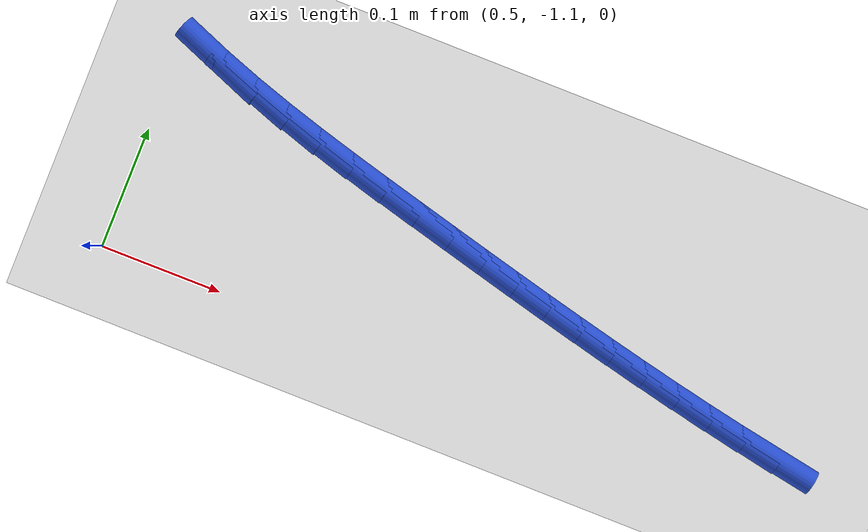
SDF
<sdf version="1.6">
 <world name="default">
  <model name="ground_plane">
   <static>1</static>
   <link name="link">
    <collision name="collision">
     <geometry><plane><normal>0 0 1</normal><size>100 100</size></plane></geometry>
     <surface><friction><ode><mu>100</mu><mu2>50</mu2></ode></friction></surface>
    </collision>
    <visual name="visual">
     <cast_shadows>0</cast_shadows>
     <geometry><plane><normal>0 0 1</normal><size>100 100</size></plane></geometry>
     <material>
      <script><uri>file://media/materials/scripts/gazebo.material</uri><name>Gazebo/WhiteGlow</name></script>
     </material>
    </visual>
   </link>
  </model>
  <model name="line">
   <link name="link_157">
    <pose>1.0533956757699363 -1.06149484795782 0.01 0 1.57 -0.18119789779623513</pose>
    <collision name="collision">
     <geometry><cylinder><radius>0.01</radius><length>0.08</length></cylinder></geometry>
    </collision>
    <visual name="visual">
     <material>
      <script><name>Gazebo/Blue</name><uri>file://media/materials/scripts/gazebo.material</uri></script>
     </material>
     <geometry><cylinder><radius>0.01</radius><length>0.08</length></cylinder></geometry>
    </visual>
   </link>
   <link name="link_158">
    <pose>1.0224971005759882 -1.0558340014719385 0.01 0 1.57 -0.1966569485214336</pose>
    <collision name="collision">
     <geometry><cylinder><radius>0.01</radius><length>0.08</length></cylinder></geometry>
    </collision>
    <visual name="visual">
     <material>
      <script><name>Gazebo/Blue</name><uri>file://media/materials/scripts/gazebo.material</uri></script>
     </material>
     <geometry><cylinder><radius>0.01</radius><length>0.08</length></cylinder></geometry>
    </visual>
   </link>
   <link name="link_159">
    <pose>0.9917760674066369 -1.0497133898960889 0.01 0 1.57 -0.2080559834303851</pose>
    <collision name="collision">
     <geometry><cylinder><radius>0.01</radius><length>0.08</length></cylinder></geometry>
    </collision>
    <visual name="visual">
     <material>
      <script><name>Gazebo/Blue</name><uri>file://media/materials/scripts/gazebo.material</uri></script>
     </material>
     <geometry><cylinder><radius>0.01</radius><length>0.08</length></cylinder></geometry>
    </visual>
   </link>
   <link name="link_160">
    <pose>0.9612503224436278 -1.0432690708495436 0.01 0 1.57 -0.21784442964093045</pose>
    <collision name="collision">
     <geometry><cylinder><radius>0.01</radius><length>0.08</length></cylinder></geometry>
    </collision>
    <visual name="visual">
     <material>
      <script><name>Gazebo/Blue</name><uri>file://media/materials/scripts/gazebo.material</uri></script>
     </material>
     <geometry><cylinder><radius>0.01</radius><length>0.08</length></cylinder></geometry>
    </visual>
   </link>
   <link name="link_161">
    <pose>0.9308836282293085 -1.0365471860408906 0.01 0 1.57 -0.226569821208393</pose>
    <collision name="collision">
     <geometry><cylinder><radius>0.01</radius><length>0.08</length></cylinder></geometry>
    </collision>
    <visual name="visual">
     <material>
      <script><name>Gazebo/Blue</name><uri>file://media/materials/scripts/gazebo.material</uri></script>
     </material>
     <geometry><cylinder><radius>0.01</radius><length>0.08</length></cylinder></geometry>
    </visual>
   </link>
   <link name="link_162">
    <pose>0.9006266797112157 -1.029572111608615 0.01 0 1.57 -0.234189511709194</pose>
    <collision name="collision">
     <geometry><cylinder><radius>0.01</radius><length>0.08</length></cylinder></geometry>
    </collision>
    <visual name="visual">
     <material>
      <script><name>Gazebo/Blue</name><uri>file://media/materials/scripts/gazebo.material</uri></script>
     </material>
     <geometry><cylinder><radius>0.01</radius><length>0.08</length></cylinder></geometry>
    </visual>
   </link>
   <link name="link_163">
    <pose>0.8704301718368871 -1.0223682236912033 0.01 0 1.57 -0.2406706755256255</pose>
    <collision name="collision">
     <geometry><cylinder><radius>0.01</radius><length>0.08</length></cylinder></geometry>
    </collision>
    <visual name="visual">
     <material>
      <script><name>Gazebo/Blue</name><uri>file://media/materials/scripts/gazebo.material</uri></script>
     </material>
     <geometry><cylinder><radius>0.01</radius><length>0.08</length></cylinder></geometry>
    </visual>
   </link>
   <link name="link_164">
    <pose>0.8402447995538597 -1.0149598984271404 0.01 0 1.57 -0.24599050556668517</pose>
    <collision name="collision">
     <geometry><cylinder><radius>0.01</radius><length>0.08</length></cylinder></geometry>
    </collision>
    <visual name="visual">
     <material>
      <script><name>Gazebo/Blue</name><uri>file://media/materials/scripts/gazebo.material</uri></script>
     </material>
     <geometry><cylinder><radius>0.01</radius><length>0.08</length></cylinder></geometry>
    </visual>
   </link>
   <link name="link_165">
    <pose>0.8100212578096723 -1.0073715119549127 0.01 0 1.57 -0.25013622279602493</pose>
    <collision name="collision">
     <geometry><cylinder><radius>0.01</radius><length>0.08</length></cylinder></geometry>
    </collision>
    <visual name="visual">
     <material>
      <script><name>Gazebo/Blue</name><uri>file://media/materials/scripts/gazebo.material</uri></script>
     </material>
     <geometry><cylinder><radius>0.01</radius><length>0.08</length></cylinder></geometry>
    </visual>
   </link>
   <link name="link_166">
    <pose>0.7797102415518614 -0.9996274404130049 0.01 0 1.57 -0.25310491281828496</pose>
    <collision name="collision">
     <geometry><cylinder><radius>0.01</radius><length>0.08</length></cylinder></geometry>
    </collision>
    <visual name="visual">
     <material>
      <script><name>Gazebo/Blue</name><uri>file://media/materials/scripts/gazebo.material</uri></script>
     </material>
     <geometry><cylinder><radius>0.01</radius><length>0.08</length></cylinder></geometry>
    </visual>
   </link>
   <link name="link_167">
    <pose>0.7492624457279649 -0.9917520599399032 0.01 0 1.57 -0.25490320784701714</pose>
    <collision name="collision">
     <geometry><cylinder><radius>0.01</radius><length>0.08</length></cylinder></geometry>
    </collision>
    <visual name="visual">
     <material>
      <script><name>Gazebo/Blue</name><uri>file://media/materials/scripts/gazebo.material</uri></script>
     </material>
     <geometry><cylinder><radius>0.01</radius><length>0.08</length></cylinder></geometry>
    </visual>
   </link>
   <link name="link_168">
    <pose>0.7186285652855201 -0.9837697466740932 0.01 0 1.57 -0.2565593640044078</pose>
    <collision name="collision">
     <geometry><cylinder><radius>0.01</radius><length>0.08</length></cylinder></geometry>
    </collision>
    <visual name="visual">
     <material>
      <script><name>Gazebo/Blue</name><uri>file://media/materials/scripts/gazebo.material</uri></script>
     </material>
     <geometry><cylinder><radius>0.01</radius><length>0.08</length></cylinder></geometry>
    </visual>
   </link>
   <link name="link_169">
    <pose>0.6877884100560467 -0.9756791164476634 0.01 0 1.57 -0.2625025700814863</pose>
    <collision name="collision">
     <geometry><cylinder><radius>0.01</radius><length>0.08</length></cylinder></geometry>
    </collision>
    <visual name="visual">
     <material>
      <script><name>Gazebo/Blue</name><uri>file://media/materials/scripts/gazebo.material</uri></script>
     </material>
     <geometry><cylinder><radius>0.01</radius><length>0.08</length></cylinder></geometry>
    </visual>
   </link>
   <link name="link_170">
    <pose>0.6568495443428656 -0.9673657503184899 0.01 0 1.57 -0.27393654334295164</pose>
    <collision name="collision">
     <geometry><cylinder><radius>0.01</radius><length>0.08</length></cylinder></geometry>
    </collision>
    <visual name="visual">
     <material>
      <script><name>Gazebo/Blue</name><uri>file://media/materials/scripts/gazebo.material</uri></script>
     </material>
     <geometry><cylinder><radius>0.01</radius><length>0.08</length></cylinder></geometry>
    </visual>
   </link>
   <link name="link_171">
    <pose>0.62595456339202 -0.9586842346196078 0.01 0 1.57 -0.2909347810982118</pose>
    <collision name="collision">
     <geometry><cylinder><radius>0.01</radius><length>0.08</length></cylinder></geometry>
    </collision>
    <visual name="visual">
     <material>
      <script><name>Gazebo/Blue</name><uri>file://media/materials/scripts/gazebo.material</uri></script>
     </material>
     <geometry><cylinder><radius>0.01</radius><length>0.08</length></cylinder></geometry>
    </visual>
   </link>
   <link name="link_172">
    <pose>0.5952460633875523 -0.9494891548541252 0.01 0 1.57 -0.3136585530160972</pose>
    <collision name="collision">
     <geometry><cylinder><radius>0.01</radius><length>0.08</length></cylinder></geometry>
    </collision>
    <visual name="visual">
     <material>
      <script><name>Gazebo/Blue</name><uri>file://media/materials/scripts/gazebo.material</uri></script>
     </material>
     <geometry><cylinder><radius>0.01</radius><length>0.08</length></cylinder></geometry>
    </visual>
   </link>
   <link name="link_173">
    <pose>0.5648666405135054 -0.9396350965251498 0.01 0 1.57 -0.3423450679885954</pose>
    <collision name="collision">
     <geometry><cylinder><radius>0.01</radius><length>0.08</length></cylinder></geometry>
    </collision>
    <visual name="visual">
     <material>
      <script><name>Gazebo/Blue</name><uri>file://media/materials/scripts/gazebo.material</uri></script>
     </material>
     <geometry><cylinder><radius>0.01</radius><length>0.08</length></cylinder></geometry>
    </visual>
   </link>
   <link name="link_174">
    <pose>0.5349588909539231 -0.9289766451357893 0.01 0 1.57 -0.3772906126850845</pose>
    <collision name="collision">
     <geometry><cylinder><radius>0.01</radius><length>0.08</length></cylinder></geometry>
    </collision>
    <visual name="visual">
     <material>
      <script><name>Gazebo/Blue</name><uri>file://media/materials/scripts/gazebo.material</uri></script>
     </material>
     <geometry><cylinder><radius>0.01</radius><length>0.08</length></cylinder></geometry>
    </visual>
   </link>
  </model>
 </world>
</sdf>
